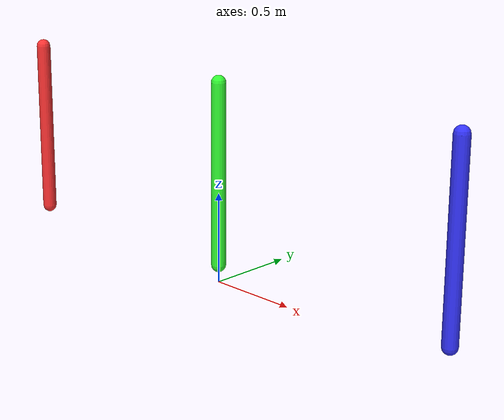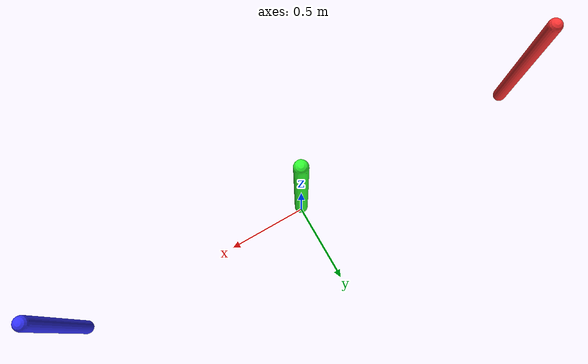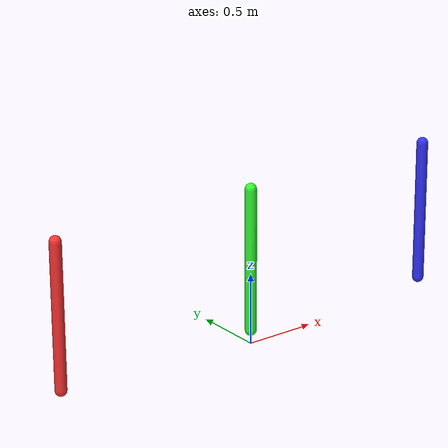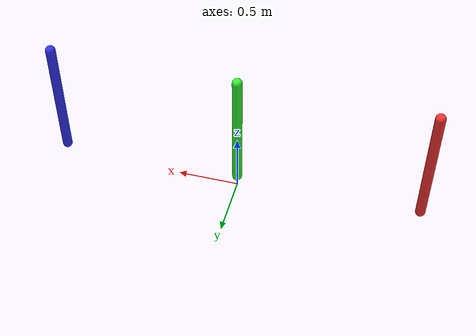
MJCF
<mujoco model="three_bars">
  <compiler angle="radian" />

  <option timestep="0.01" />

  <asset>
    <material name="red_mat" rgba="1 0.2 0.2 1"/>
    <material name="green_mat" rgba="0.2 1 0.2 1"/>
    <material name="blue_mat" rgba="0.2 0.2 1 1"/>
  </asset>

  <worldbody>
    <light pos="0 0 3" />

    <body name="pole1" pos="-1.5 0 0.6">
      <joint name="pole_joint1" type="hinge" axis="0 1 0" limited="false" />
      <geom type="capsule" fromto="0 0 -0.5 0 0 0.5" size="0.04" material="red_mat"/>
    </body>

    <body name="pole2" pos="0 0 0.6">
      <joint name="pole_joint2" type="hinge" axis="0 1 0" limited="false" />
      <geom type="capsule" fromto="0 0 -0.5 0 0 0.5" size="0.04" material="green_mat"/>
    </body>

    <body name="pole3" pos="1.5 0 0.6">
      <joint name="pole_joint3" type="hinge" axis="0 1 0" limited="false" />
      <geom type="capsule" fromto="0 0 -0.5 0 0 0.5" size="0.04" material="blue_mat"/>
    </body>

  </worldbody>

  <actuator>
    <motor name="torque_actuator" joint="pole_joint1" gear="5" />

    <position name="position_actuator" joint="pole_joint2" kp="1000" kv="10" />

    <velocity name="velocity_actuator" joint="pole_joint3" kv="10" />
  </actuator>

</mujoco>
